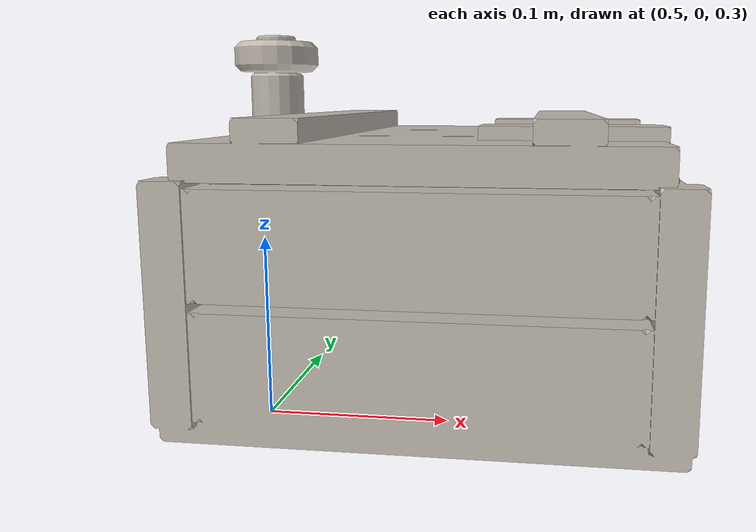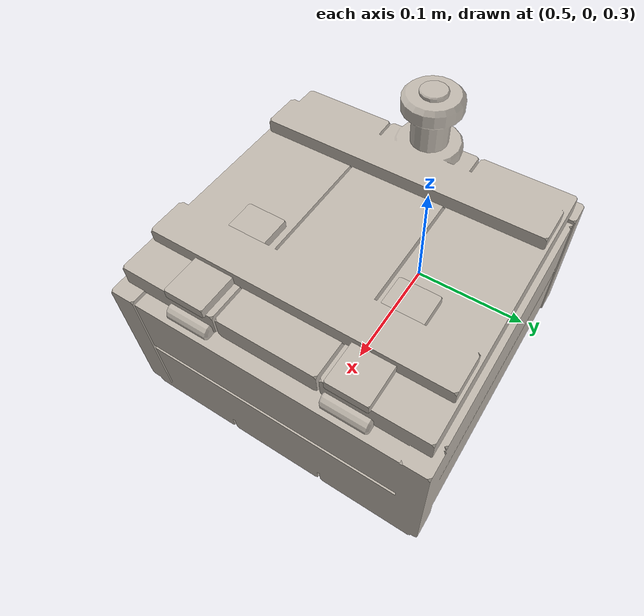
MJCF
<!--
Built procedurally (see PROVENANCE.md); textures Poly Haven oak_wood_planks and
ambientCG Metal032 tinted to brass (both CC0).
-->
<?xml version="1.0"?>
<mujoco model="lid">
  <compiler angle="radian" meshdir="assets" texturedir="assets"/>

  <asset>
    <texture name="oak_tex" type="2d" file="oak.png"/>
    <material name="oak" texture="oak_tex" specular="0.12" shininess="0.2" reflectance="0.0"/>
    <texture name="brass_tex" type="2d" file="brass.png"/>
    <material name="brass" texture="brass_tex" specular="0.75" shininess="0.7" reflectance="0.2"/>
    <mesh name="lid_box" file="lid_box.obj"/>
    <mesh name="lid_hinge_leaf" file="lid_hinge_leaf.obj"/>
    <mesh name="lid_boards" file="lid_boards.obj"/>
    <mesh name="lid_straps" file="lid_straps.obj"/>
  </asset>

  <worldbody>
    <body name="lid_base" pos="0.6 0 0.4" mocap="true">
      <geom name="lid_box_visual" type="mesh" mesh="lid_box" material="oak" contype="0" conaffinity="0" group="2" mass="0"/>
      <geom name="lid_hinge_leaf_visual" type="mesh" mesh="lid_hinge_leaf" material="brass" contype="0" conaffinity="0" group="2" mass="0"/>
      <geom name="lid_body" type="box" pos="0.0000 0.0000 -0.0600" size="0.1100 0.1100 0.0100" group="3" rgba="0.5 0.5 0.5 0.25" condim="3" friction="1 0.03 0.003" contype="2" conaffinity="1" solref="0.01 1"/>
      <geom name="lid_wall_far" type="box" pos="0.1000 0.0000 -0.0100" size="0.0100 0.1100 0.0500" group="3" rgba="0.5 0.5 0.5 0.25" condim="3" friction="1 0.03 0.003" contype="2" conaffinity="1" solref="0.01 1"/>
      <geom name="lid_wall_near" type="box" pos="-0.1000 0.0000 -0.0100" size="0.0100 0.1100 0.0500" group="3" rgba="0.5 0.5 0.5 0.25" condim="3" friction="1 0.03 0.003" contype="2" conaffinity="1" solref="0.01 1"/>
      <geom name="lid_wall_left" type="box" pos="0.0000 0.1000 -0.0100" size="0.1100 0.0100 0.0500" group="3" rgba="0.5 0.5 0.5 0.25" condim="3" friction="1 0.03 0.003" contype="2" conaffinity="1" solref="0.01 1"/>
      <geom name="lid_wall_right" type="box" pos="0.0000 -0.1000 -0.0100" size="0.1100 0.0100 0.0500" group="3" rgba="0.5 0.5 0.5 0.25" condim="3" friction="1 0.03 0.003" contype="2" conaffinity="1" solref="0.01 1"/>
      <!-- Base site at the lifting lip when the lid is closed. -->
      <site name="base_site" pos="-0.09 0.0 0.059000000000000004" size="0.01" rgba="0 0 1 0.3"/>
      <!-- 1 mm clearance between the closed lid underside and the box rim. -->
      <body name="handle" pos="0 0 0.009">
        <joint name="lid_hinge" type="hinge" axis="0 -1 0" pos="0.10 0 0.04"
               range="-1.308997 0" limited="true" damping="0.05"/>
      <geom name="lid_boards_visual" type="mesh" mesh="lid_boards" material="oak" contype="0" conaffinity="0" group="2" mass="0"/>
      <geom name="lid_straps_visual" type="mesh" mesh="lid_straps" material="brass" contype="0" conaffinity="0" group="2" mass="0"/>
      <geom name="lid_panel" type="box" pos="0.0000 0.0000 0.0400" size="0.1000 0.1100 0.0080" group="3" rgba="0.5 0.5 0.5 0.25" condim="3" friction="1 0.03 0.003" contype="2" conaffinity="1" solref="0.01 1" density="450.0"/>
      <geom name="handle" type="box" pos="-0.0900 0.0000 0.0640" size="0.0140 0.0140 0.0180" group="3" rgba="0.5 0.5 0.5 0.25" condim="3" friction="1 0.03 0.003" contype="2" conaffinity="1" solref="0.01 1" density="450.0"/>
      <geom name="handle_cap" type="box" pos="-0.0900 0.0000 0.0880" size="0.0220 0.0220 0.0060" group="3" rgba="0.5 0.5 0.5 0.25" condim="3" friction="1 0.03 0.003" contype="2" conaffinity="1" solref="0.01 1" density="450.0"/>
        <site name="object_site" pos="-0.09 0.0 0.05" size="0.01 0.01 0.01" rgba="1 0 0 1"/>
      </body>
    </body>
  </worldbody>
</mujoco>
